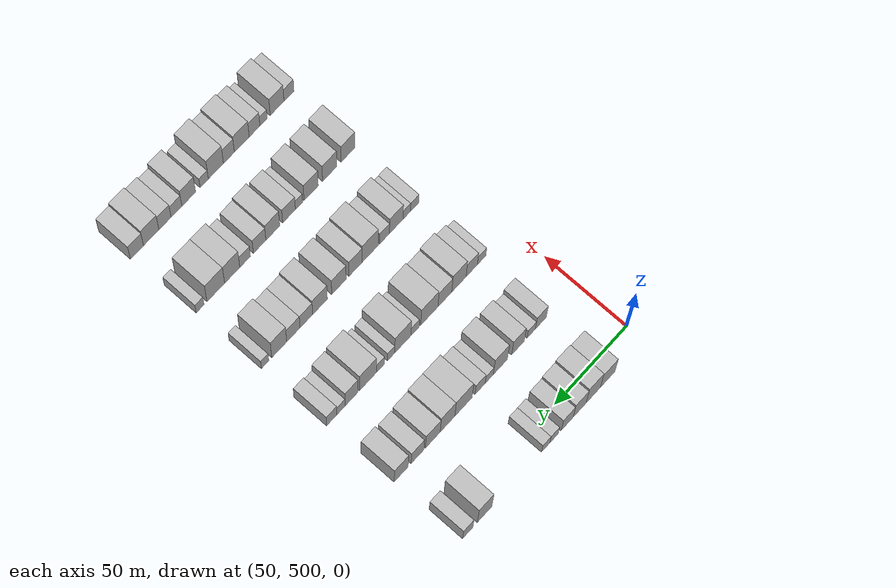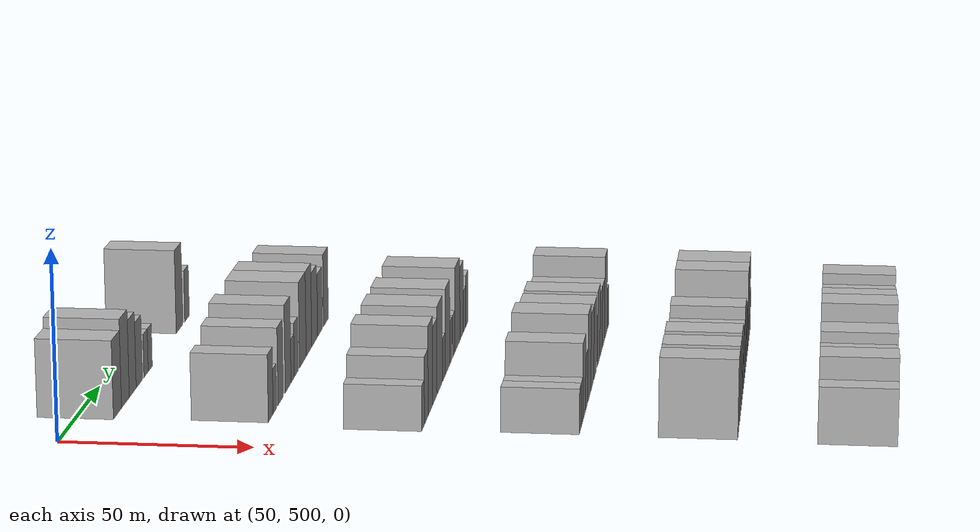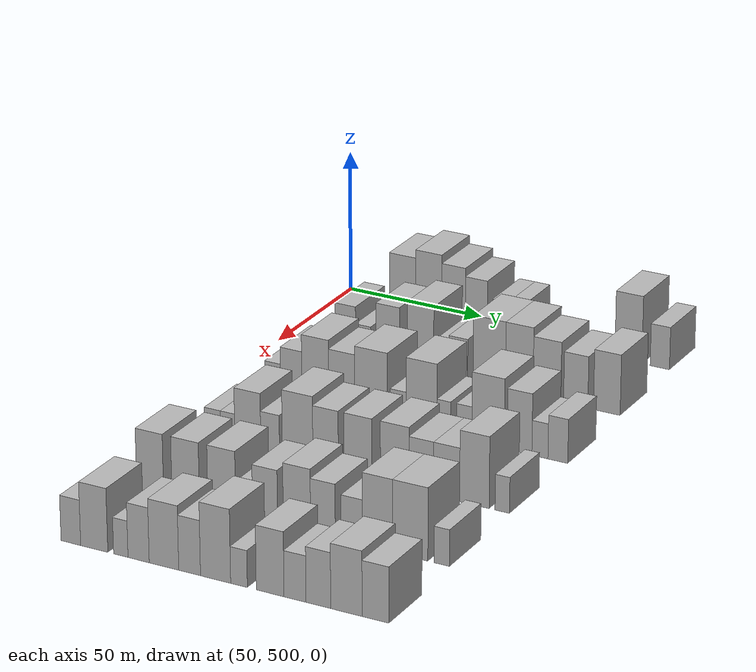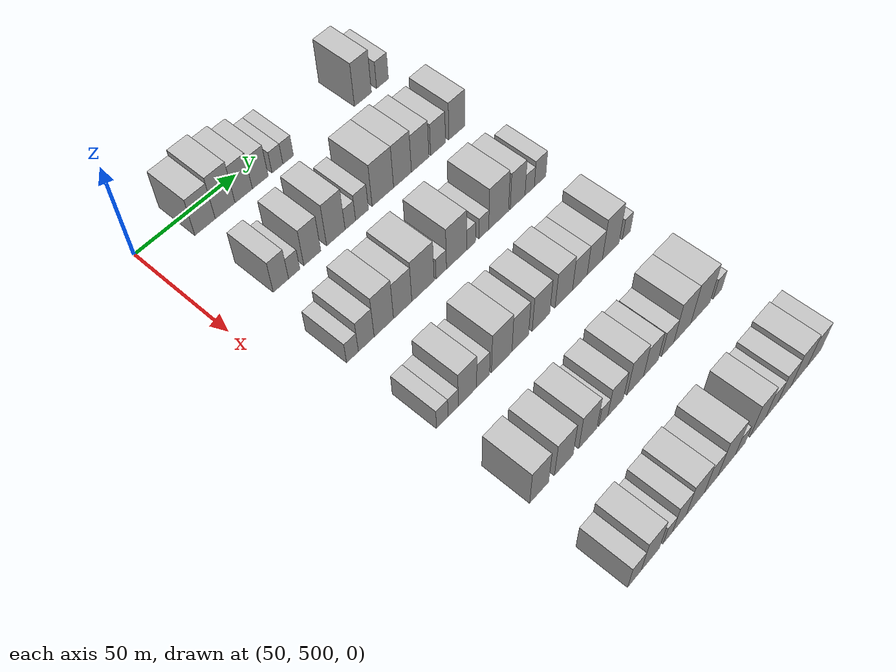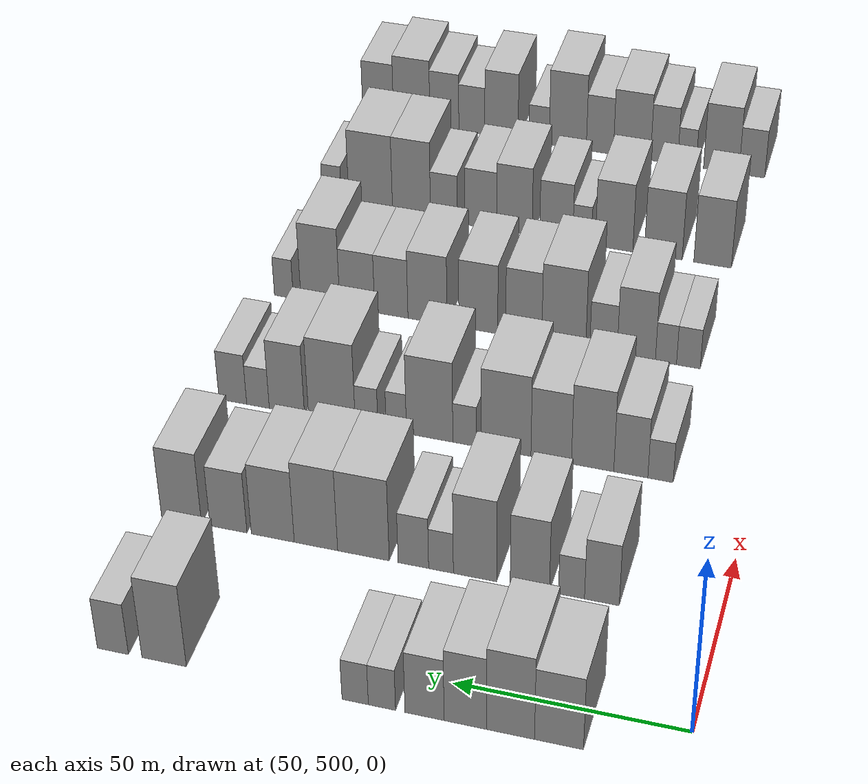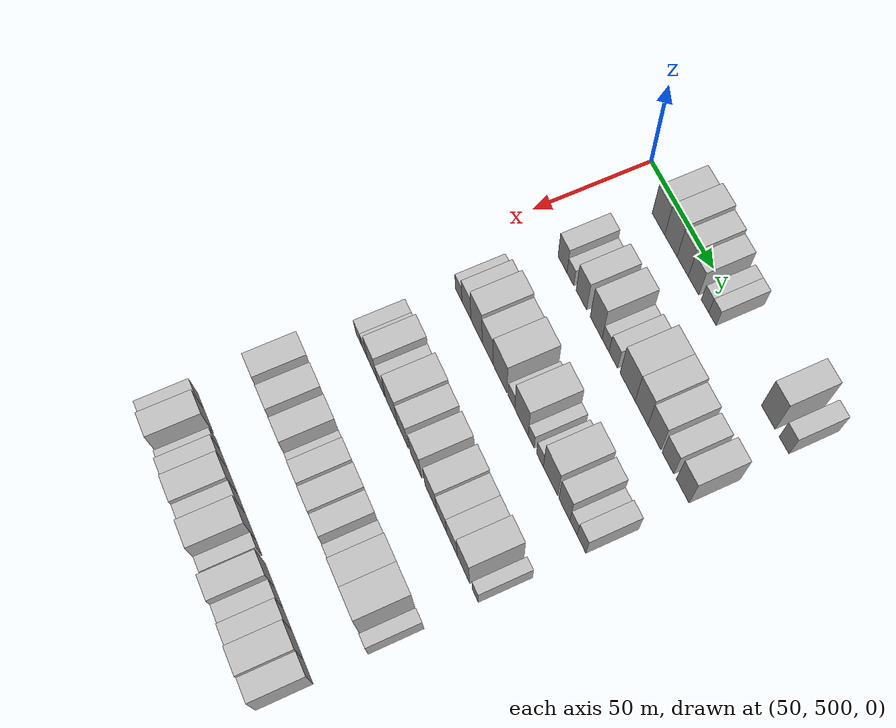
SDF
<sdf version="1.6">
 <world name="default">
  <model name="building_122">
   <static>1</static>
   <pose>50.0000 525.2408 0 0.000000 0.000000 0.000000</pose>
   <link name="link">
    <pose>0 0 10.50 0 0 0</pose>
    <collision name="collision"><geometry><box><size>20.0000 10.0900 21.0000</size></box></geometry></collision>
    <visual name="visual">
     <cast_shadows>0</cast_shadows>
     <geometry><box><size>20.0000 10.0900 21.0000</size></box></geometry>
     <material>
      <script>
       <uri>model://HANNAS_wall/materials/scripts</uri>
       <uri>model://HANNAS_wall/materials/textures</uri>
       <name>vrc/HANNAS_wall</name>
      </script>
     </material>
    </visual>
   </link>
  </model>
  <model name="building_123">
   <static>1</static>
   <pose>50.0000 535.2632 0 0.000000 0.000000 0.000000</pose>
   <link name="link">
    <pose>0 0 12.00 0 0 0</pose>
    <collision name="collision"><geometry><box><size>20.0000 9.9548 24.0000</size></box></geometry></collision>
    <visual name="visual">
     <cast_shadows>0</cast_shadows>
     <geometry><box><size>20.0000 9.9548 24.0000</size></box></geometry>
     <material>
      <script>
       <uri>model://HANNAS_wall/materials/scripts</uri>
       <uri>model://HANNAS_wall/materials/textures</uri>
       <name>vrc/HANNAS_wall</name>
      </script>
     </material>
    </visual>
   </link>
  </model>
  <model name="building_124">
   <static>1</static>
   <pose>50.0000 544.6815 0 0.000000 0.000000 0.000000</pose>
   <link name="link">
    <pose>0 0 10.50 0 0 0</pose>
    <collision name="collision"><geometry><box><size>20.0000 8.8819 21.0000</size></box></geometry></collision>
    <visual name="visual">
     <cast_shadows>0</cast_shadows>
     <geometry><box><size>20.0000 8.8819 21.0000</size></box></geometry>
     <material>
      <script>
       <uri>model://HANNAS_wall/materials/scripts</uri>
       <uri>model://HANNAS_wall/materials/textures</uri>
       <name>vrc/HANNAS_wall</name>
      </script>
     </material>
    </visual>
   </link>
  </model>
  <model name="building_125">
   <static>1</static>
   <pose>50.0000 553.2467 0 0.000000 0.000000 0.000000</pose>
   <link name="link">
    <pose>0 0 9.00 0 0 0</pose>
    <collision name="collision"><geometry><box><size>20.0000 8.2486 18.0000</size></box></geometry></collision>
    <visual name="visual">
     <cast_shadows>0</cast_shadows>
     <geometry><box><size>20.0000 8.2486 18.0000</size></box></geometry>
     <material>
      <script>
       <uri>model://HANNAS_wall/materials/scripts</uri>
       <uri>model://HANNAS_wall/materials/textures</uri>
       <name>vrc/HANNAS_wall</name>
      </script>
     </material>
    </visual>
   </link>
  </model>
  <model name="building_126">
   <static>1</static>
   <pose>50.0000 562.2612 0 0.000000 0.000000 0.000000</pose>
   <link name="link">
    <pose>0 0 6.00 0 0 0</pose>
    <collision name="collision"><geometry><box><size>20.0000 5.7803 12.0000</size></box></geometry></collision>
    <visual name="visual">
     <cast_shadows>0</cast_shadows>
     <geometry><box><size>20.0000 5.7803 12.0000</size></box></geometry>
     <material>
      <script>
       <uri>model://HANNAS_wall/materials/scripts</uri>
       <uri>model://HANNAS_wall/materials/textures</uri>
       <name>vrc/HANNAS_wall</name>
      </script>
     </material>
    </visual>
   </link>
  </model>
  <model name="building_127">
   <static>1</static>
   <pose>50.0000 567.9656 0 0.000000 0.000000 0.000000</pose>
   <link name="link">
    <pose>0 0 6.00 0 0 0</pose>
    <collision name="collision"><geometry><box><size>20.0000 5.6286 12.0000</size></box></geometry></collision>
    <visual name="visual">
     <cast_shadows>0</cast_shadows>
     <geometry><box><size>20.0000 5.6286 12.0000</size></box></geometry>
     <material>
      <script>
       <uri>model://HANNAS_wall/materials/scripts</uri>
       <uri>model://HANNAS_wall/materials/textures</uri>
       <name>vrc/HANNAS_wall</name>
      </script>
     </material>
    </visual>
   </link>
  </model>
  <model name="building_128">
   <static>1</static>
   <pose>50.0000 609.5150 0 0.000000 0.000000 0.000000</pose>
   <link name="link">
    <pose>0 0 12.00 0 0 0</pose>
    <collision name="collision"><geometry><box><size>20.0000 9.8234 24.0000</size></box></geometry></collision>
    <visual name="visual">
     <cast_shadows>0</cast_shadows>
     <geometry><box><size>20.0000 9.8234 24.0000</size></box></geometry>
     <material>
      <script>
       <uri>model://HANNAS_wall/materials/scripts</uri>
       <uri>model://HANNAS_wall/materials/textures</uri>
       <name>vrc/HANNAS_wall</name>
      </script>
     </material>
    </visual>
   </link>
  </model>
  <model name="building_129">
   <static>1</static>
   <pose>50.0000 620.8971 0 0.000000 0.000000 0.000000</pose>
   <link name="link">
    <pose>0 0 7.50 0 0 0</pose>
    <collision name="collision"><geometry><box><size>20.0000 6.9407 15.0000</size></box></geometry></collision>
    <visual name="visual">
     <cast_shadows>0</cast_shadows>
     <geometry><box><size>20.0000 6.9407 15.0000</size></box></geometry>
     <material>
      <script>
       <uri>model://HANNAS_wall/materials/scripts</uri>
       <uri>model://HANNAS_wall/materials/textures</uri>
       <name>vrc/HANNAS_wall</name>
      </script>
     </material>
    </visual>
   </link>
  </model>
  <model name="building_256">
   <static>1</static>
   <pose>90.0000 525.4615 0 0.000000 0.000000 0.000000</pose>
   <link name="link">
    <pose>0 0 9.00 0 0 0</pose>
    <collision name="collision"><geometry><box><size>20.0000 7.6014 18.0000</size></box></geometry></collision>
    <visual name="visual">
     <cast_shadows>0</cast_shadows>
     <geometry><box><size>20.0000 7.6014 18.0000</size></box></geometry>
     <material>
      <script>
       <uri>model://HANNAS_wall/materials/scripts</uri>
       <uri>model://HANNAS_wall/materials/textures</uri>
       <name>vrc/HANNAS_wall</name>
      </script>
     </material>
    </visual>
   </link>
  </model>
  <model name="building_257">
   <static>1</static>
   <pose>90.0000 532.1139 0 0.000000 0.000000 0.000000</pose>
   <link name="link">
    <pose>0 0 6.00 0 0 0</pose>
    <collision name="collision"><geometry><box><size>20.0000 5.7034 12.0000</size></box></geometry></collision>
    <visual name="visual">
     <cast_shadows>0</cast_shadows>
     <geometry><box><size>20.0000 5.7034 12.0000</size></box></geometry>
     <material>
      <script>
       <uri>model://HANNAS_wall/materials/scripts</uri>
       <uri>model://HANNAS_wall/materials/textures</uri>
       <name>vrc/HANNAS_wall</name>
      </script>
     </material>
    </visual>
   </link>
  </model>
  <model name="building_258">
   <static>1</static>
   <pose>90.0000 541.3035 0 0.000000 0.000000 0.000000</pose>
   <link name="link">
    <pose>0 0 10.50 0 0 0</pose>
    <collision name="collision"><geometry><box><size>20.0000 8.6757 21.0000</size></box></geometry></collision>
    <visual name="visual">
     <cast_shadows>0</cast_shadows>
     <geometry><box><size>20.0000 8.6757 21.0000</size></box></geometry>
     <material>
      <script>
       <uri>model://HANNAS_wall/materials/scripts</uri>
       <uri>model://HANNAS_wall/materials/textures</uri>
       <name>vrc/HANNAS_wall</name>
      </script>
     </material>
    </visual>
   </link>
  </model>
  <model name="building_259">
   <static>1</static>
   <pose>90.0000 553.4825 0 0.000000 0.000000 0.000000</pose>
   <link name="link">
    <pose>0 0 12.00 0 0 0</pose>
    <collision name="collision"><geometry><box><size>20.0000 9.6823 24.0000</size></box></geometry></collision>
    <visual name="visual">
     <cast_shadows>0</cast_shadows>
     <geometry><box><size>20.0000 9.6823 24.0000</size></box></geometry>
     <material>
      <script>
       <uri>model://HANNAS_wall/materials/scripts</uri>
       <uri>model://HANNAS_wall/materials/textures</uri>
       <name>vrc/HANNAS_wall</name>
      </script>
     </material>
    </visual>
   </link>
  </model>
  <model name="building_260">
   <static>1</static>
   <pose>90.0000 561.1058 0 0.000000 0.000000 0.000000</pose>
   <link name="link">
    <pose>0 0 6.00 0 0 0</pose>
    <collision name="collision"><geometry><box><size>20.0000 5.5644 12.0000</size></box></geometry></collision>
    <visual name="visual">
     <cast_shadows>0</cast_shadows>
     <geometry><box><size>20.0000 5.5644 12.0000</size></box></geometry>
     <material>
      <script>
       <uri>model://HANNAS_wall/materials/scripts</uri>
       <uri>model://HANNAS_wall/materials/textures</uri>
       <name>vrc/HANNAS_wall</name>
      </script>
     </material>
    </visual>
   </link>
  </model>
  <model name="building_261">
   <static>1</static>
   <pose>90.0000 567.3326 0 0.000000 0.000000 0.000000</pose>
   <link name="link">
    <pose>0 0 7.50 0 0 0</pose>
    <collision name="collision"><geometry><box><size>20.0000 6.8892 15.0000</size></box></geometry></collision>
    <visual name="visual">
     <cast_shadows>0</cast_shadows>
     <geometry><box><size>20.0000 6.8892 15.0000</size></box></geometry>
     <material>
      <script>
       <uri>model://HANNAS_wall/materials/scripts</uri>
       <uri>model://HANNAS_wall/materials/textures</uri>
       <name>vrc/HANNAS_wall</name>
      </script>
     </material>
    </visual>
   </link>
  </model>
  <model name="building_262">
   <static>1</static>
   <pose>90.0000 578.6612 0 0.000000 0.000000 0.000000</pose>
   <link name="link">
    <pose>0 0 12.00 0 0 0</pose>
    <collision name="collision"><geometry><box><size>20.0000 11.7679 24.0000</size></box></geometry></collision>
    <visual name="visual">
     <cast_shadows>0</cast_shadows>
     <geometry><box><size>20.0000 11.7679 24.0000</size></box></geometry>
     <material>
      <script>
       <uri>model://HANNAS_wall/materials/scripts</uri>
       <uri>model://HANNAS_wall/materials/textures</uri>
       <name>vrc/HANNAS_wall</name>
      </script>
     </material>
    </visual>
   </link>
  </model>
  <model name="building_263">
   <static>1</static>
   <pose>90.0000 589.5356 0 0.000000 0.000000 0.000000</pose>
   <link name="link">
    <pose>0 0 12.00 0 0 0</pose>
    <collision name="collision"><geometry><box><size>20.0000 9.9809 24.0000</size></box></geometry></collision>
    <visual name="visual">
     <cast_shadows>0</cast_shadows>
     <geometry><box><size>20.0000 9.9809 24.0000</size></box></geometry>
     <material>
      <script>
       <uri>model://HANNAS_wall/materials/scripts</uri>
       <uri>model://HANNAS_wall/materials/textures</uri>
       <name>vrc/HANNAS_wall</name>
      </script>
     </material>
    </visual>
   </link>
  </model>
  <model name="building_264">
   <static>1</static>
   <pose>90.0000 599.5096 0 0.000000 0.000000 0.000000</pose>
   <link name="link">
    <pose>0 0 10.50 0 0 0</pose>
    <collision name="collision"><geometry><box><size>20.0000 9.9672 21.0000</size></box></geometry></collision>
    <visual name="visual">
     <cast_shadows>0</cast_shadows>
     <geometry><box><size>20.0000 9.9672 21.0000</size></box></geometry>
     <material>
      <script>
       <uri>model://HANNAS_wall/materials/scripts</uri>
       <uri>model://HANNAS_wall/materials/textures</uri>
       <name>vrc/HANNAS_wall</name>
      </script>
     </material>
    </visual>
   </link>
  </model>
  <model name="building_265">
   <static>1</static>
   <pose>90.0000 609.8126 0 0.000000 0.000000 0.000000</pose>
   <link name="link">
    <pose>0 0 9.00 0 0 0</pose>
    <collision name="collision"><geometry><box><size>20.0000 8.6388 18.0000</size></box></geometry></collision>
    <visual name="visual">
     <cast_shadows>0</cast_shadows>
     <geometry><box><size>20.0000 8.6388 18.0000</size></box></geometry>
     <material>
      <script>
       <uri>model://HANNAS_wall/materials/scripts</uri>
       <uri>model://HANNAS_wall/materials/textures</uri>
       <name>vrc/HANNAS_wall</name>
      </script>
     </material>
    </visual>
   </link>
  </model>
  <model name="building_266">
   <static>1</static>
   <pose>90.0000 620.8417 0 0.000000 0.000000 0.000000</pose>
   <link name="link">
    <pose>0 0 10.50 0 0 0</pose>
    <collision name="collision"><geometry><box><size>20.0000 9.4192 21.0000</size></box></geometry></collision>
    <visual name="visual">
     <cast_shadows>0</cast_shadows>
     <geometry><box><size>20.0000 9.4192 21.0000</size></box></geometry>
     <material>
      <script>
       <uri>model://HANNAS_wall/materials/scripts</uri>
       <uri>model://HANNAS_wall/materials/textures</uri>
       <name>vrc/HANNAS_wall</name>
      </script>
     </material>
    </visual>
   </link>
  </model>
  <model name="building_394">
   <static>1</static>
   <pose>130.0000 520.9118 0 0.000000 0.000000 0.000000</pose>
   <link name="link">
    <pose>0 0 6.00 0 0 0</pose>
    <collision name="collision"><geometry><box><size>20.0000 5.8209 12.0000</size></box></geometry></collision>
    <visual name="visual">
     <cast_shadows>0</cast_shadows>
     <geometry><box><size>20.0000 5.8209 12.0000</size></box></geometry>
     <material>
      <script>
       <uri>model://HANNAS_wall/materials/scripts</uri>
       <uri>model://HANNAS_wall/materials/textures</uri>
       <name>vrc/HANNAS_wall</name>
      </script>
     </material>
    </visual>
   </link>
  </model>
  <model name="building_395">
   <static>1</static>
   <pose>130.0000 527.7635 0 0.000000 0.000000 0.000000</pose>
   <link name="link">
    <pose>0 0 9.00 0 0 0</pose>
    <collision name="collision"><geometry><box><size>20.0000 7.8825 18.0000</size></box></geometry></collision>
    <visual name="visual">
     <cast_shadows>0</cast_shadows>
     <geometry><box><size>20.0000 7.8825 18.0000</size></box></geometry>
     <material>
      <script>
       <uri>model://HANNAS_wall/materials/scripts</uri>
       <uri>model://HANNAS_wall/materials/textures</uri>
       <name>vrc/HANNAS_wall</name>
      </script>
     </material>
    </visual>
   </link>
  </model>
  <model name="building_396">
   <static>1</static>
   <pose>130.0000 536.6407 0 0.000000 0.000000 0.000000</pose>
   <link name="link">
    <pose>0 0 12.00 0 0 0</pose>
    <collision name="collision"><geometry><box><size>20.0000 9.8718 24.0000</size></box></geometry></collision>
    <visual name="visual">
     <cast_shadows>0</cast_shadows>
     <geometry><box><size>20.0000 9.8718 24.0000</size></box></geometry>
     <material>
      <script>
       <uri>model://HANNAS_wall/materials/scripts</uri>
       <uri>model://HANNAS_wall/materials/textures</uri>
       <name>vrc/HANNAS_wall</name>
      </script>
     </material>
    </visual>
   </link>
  </model>
  <model name="building_397">
   <static>1</static>
   <pose>130.0000 546.3269 0 0.000000 0.000000 0.000000</pose>
   <link name="link">
    <pose>0 0 10.50 0 0 0</pose>
    <collision name="collision"><geometry><box><size>20.0000 9.5007 21.0000</size></box></geometry></collision>
    <visual name="visual">
     <cast_shadows>0</cast_shadows>
     <geometry><box><size>20.0000 9.5007 21.0000</size></box></geometry>
     <material>
      <script>
       <uri>model://HANNAS_wall/materials/scripts</uri>
       <uri>model://HANNAS_wall/materials/textures</uri>
       <name>vrc/HANNAS_wall</name>
      </script>
     </material>
    </visual>
   </link>
  </model>
  <model name="building_398">
   <static>1</static>
   <pose>130.0000 557.0005 0 0.000000 0.000000 0.000000</pose>
   <link name="link">
    <pose>0 0 12.00 0 0 0</pose>
    <collision name="collision"><geometry><box><size>20.0000 11.8466 24.0000</size></box></geometry></collision>
    <visual name="visual">
     <cast_shadows>0</cast_shadows>
     <geometry><box><size>20.0000 11.8466 24.0000</size></box></geometry>
     <material>
      <script>
       <uri>model://HANNAS_wall/materials/scripts</uri>
       <uri>model://HANNAS_wall/materials/textures</uri>
       <name>vrc/HANNAS_wall</name>
      </script>
     </material>
    </visual>
   </link>
  </model>
  <model name="building_399">
   <static>1</static>
   <pose>130.0000 566.7498 0 0.000000 0.000000 0.000000</pose>
   <link name="link">
    <pose>0 0 6.00 0 0 0</pose>
    <collision name="collision"><geometry><box><size>20.0000 5.6519 12.0000</size></box></geometry></collision>
    <visual name="visual">
     <cast_shadows>0</cast_shadows>
     <geometry><box><size>20.0000 5.6519 12.0000</size></box></geometry>
     <material>
      <script>
       <uri>model://HANNAS_wall/materials/scripts</uri>
       <uri>model://HANNAS_wall/materials/textures</uri>
       <name>vrc/HANNAS_wall</name>
      </script>
     </material>
    </visual>
   </link>
  </model>
  <model name="building_400">
   <static>1</static>
   <pose>130.0000 575.1380 0 0.000000 0.000000 0.000000</pose>
   <link name="link">
    <pose>0 0 12.00 0 0 0</pose>
    <collision name="collision"><geometry><box><size>20.0000 11.1246 24.0000</size></box></geometry></collision>
    <visual name="visual">
     <cast_shadows>0</cast_shadows>
     <geometry><box><size>20.0000 11.1246 24.0000</size></box></geometry>
     <material>
      <script>
       <uri>model://HANNAS_wall/materials/scripts</uri>
       <uri>model://HANNAS_wall/materials/textures</uri>
       <name>vrc/HANNAS_wall</name>
      </script>
     </material>
    </visual>
   </link>
  </model>
  <model name="building_401">
   <static>1</static>
   <pose>130.0000 583.1389 0 0.000000 0.000000 0.000000</pose>
   <link name="link">
    <pose>0 0 6.00 0 0 0</pose>
    <collision name="collision"><geometry><box><size>20.0000 4.8771 12.0000</size></box></geometry></collision>
    <visual name="visual">
     <cast_shadows>0</cast_shadows>
     <geometry><box><size>20.0000 4.8771 12.0000</size></box></geometry>
     <material>
      <script>
       <uri>model://HANNAS_wall/materials/scripts</uri>
       <uri>model://HANNAS_wall/materials/textures</uri>
       <name>vrc/HANNAS_wall</name>
      </script>
     </material>
    </visual>
   </link>
  </model>
  <model name="building_402">
   <static>1</static>
   <pose>130.0000 590.3279 0 0.000000 0.000000 0.000000</pose>
   <link name="link">
    <pose>0 0 6.00 0 0 0</pose>
    <collision name="collision"><geometry><box><size>20.0000 5.5009 12.0000</size></box></geometry></collision>
    <visual name="visual">
     <cast_shadows>0</cast_shadows>
     <geometry><box><size>20.0000 5.5009 12.0000</size></box></geometry>
     <material>
      <script>
       <uri>model://HANNAS_wall/materials/scripts</uri>
       <uri>model://HANNAS_wall/materials/textures</uri>
       <name>vrc/HANNAS_wall</name>
      </script>
     </material>
    </visual>
   </link>
  </model>
  <model name="building_403">
   <static>1</static>
   <pose>130.0000 598.7804 0 0.000000 0.000000 0.000000</pose>
   <link name="link">
    <pose>0 0 12.00 0 0 0</pose>
    <collision name="collision"><geometry><box><size>20.0000 11.4042 24.0000</size></box></geometry></collision>
    <visual name="visual">
     <cast_shadows>0</cast_shadows>
     <geometry><box><size>20.0000 11.4042 24.0000</size></box></geometry>
     <material>
      <script>
       <uri>model://HANNAS_wall/materials/scripts</uri>
       <uri>model://HANNAS_wall/materials/textures</uri>
       <name>vrc/HANNAS_wall</name>
      </script>
     </material>
    </visual>
   </link>
  </model>
  <model name="building_404">
   <static>1</static>
   <pose>130.0000 609.8149 0 0.000000 0.000000 0.000000</pose>
   <link name="link">
    <pose>0 0 10.50 0 0 0</pose>
    <collision name="collision"><geometry><box><size>20.0000 8.6649 21.0000</size></box></geometry></collision>
    <visual name="visual">
     <cast_shadows>0</cast_shadows>
     <geometry><box><size>20.0000 8.6649 21.0000</size></box></geometry>
     <material>
      <script>
       <uri>model://HANNAS_wall/materials/scripts</uri>
       <uri>model://HANNAS_wall/materials/textures</uri>
       <name>vrc/HANNAS_wall</name>
      </script>
     </material>
    </visual>
   </link>
  </model>
  <model name="building_405">
   <static>1</static>
   <pose>130.0000 616.9475 0 0.000000 0.000000 0.000000</pose>
   <link name="link">
    <pose>0 0 6.00 0 0 0</pose>
    <collision name="collision"><geometry><box><size>20.0000 5.6003 12.0000</size></box></geometry></collision>
    <visual name="visual">
     <cast_shadows>0</cast_shadows>
     <geometry><box><size>20.0000 5.6003 12.0000</size></box></geometry>
     <material>
      <script>
       <uri>model://HANNAS_wall/materials/scripts</uri>
       <uri>model://HANNAS_wall/materials/textures</uri>
       <name>vrc/HANNAS_wall</name>
      </script>
     </material>
    </visual>
   </link>
  </model>
  <model name="building_406">
   <static>1</static>
   <pose>130.0000 623.1791 0 0.000000 0.000000 0.000000</pose>
   <link name="link">
    <pose>0 0 7.50 0 0 0</pose>
    <collision name="collision"><geometry><box><size>20.0000 6.8630 15.0000</size></box></geometry></collision>
    <visual name="visual">
     <cast_shadows>0</cast_shadows>
     <geometry><box><size>20.0000 6.8630 15.0000</size></box></geometry>
     <material>
      <script>
       <uri>model://HANNAS_wall/materials/scripts</uri>
       <uri>model://HANNAS_wall/materials/textures</uri>
       <name>vrc/HANNAS_wall</name>
      </script>
     </material>
    </visual>
   </link>
  </model>
  <model name="building_529">
   <static>1</static>
   <pose>170.0000 522.3220 0 0.000000 0.000000 0.000000</pose>
   <link name="link">
    <pose>0 0 6.00 0 0 0</pose>
    <collision name="collision"><geometry><box><size>20.0000 5.7601 12.0000</size></box></geometry></collision>
    <visual name="visual">
     <cast_shadows>0</cast_shadows>
     <geometry><box><size>20.0000 5.7601 12.0000</size></box></geometry>
     <material>
      <script>
       <uri>model://HANNAS_wall/materials/scripts</uri>
       <uri>model://HANNAS_wall/materials/textures</uri>
       <name>vrc/HANNAS_wall</name>
      </script>
     </material>
    </visual>
   </link>
  </model>
  <model name="building_530">
   <static>1</static>
   <pose>170.0000 527.7777 0 0.000000 0.000000 0.000000</pose>
   <link name="link">
    <pose>0 0 6.00 0 0 0</pose>
    <collision name="collision"><geometry><box><size>20.0000 5.1512 12.0000</size></box></geometry></collision>
    <visual name="visual">
     <cast_shadows>0</cast_shadows>
     <geometry><box><size>20.0000 5.1512 12.0000</size></box></geometry>
     <material>
      <script>
       <uri>model://HANNAS_wall/materials/scripts</uri>
       <uri>model://HANNAS_wall/materials/textures</uri>
       <name>vrc/HANNAS_wall</name>
      </script>
     </material>
    </visual>
   </link>
  </model>
  <model name="building_531">
   <static>1</static>
   <pose>170.0000 535.0440 0 0.000000 0.000000 0.000000</pose>
   <link name="link">
    <pose>0 0 10.50 0 0 0</pose>
    <collision name="collision"><geometry><box><size>20.0000 9.3813 21.0000</size></box></geometry></collision>
    <visual name="visual">
     <cast_shadows>0</cast_shadows>
     <geometry><box><size>20.0000 9.3813 21.0000</size></box></geometry>
     <material>
      <script>
       <uri>model://HANNAS_wall/materials/scripts</uri>
       <uri>model://HANNAS_wall/materials/textures</uri>
       <name>vrc/HANNAS_wall</name>
      </script>
     </material>
    </visual>
   </link>
  </model>
  <model name="building_532">
   <static>1</static>
   <pose>170.0000 543.1079 0 0.000000 0.000000 0.000000</pose>
   <link name="link">
    <pose>0 0 7.50 0 0 0</pose>
    <collision name="collision"><geometry><box><size>20.0000 6.7465 15.0000</size></box></geometry></collision>
    <visual name="visual">
     <cast_shadows>0</cast_shadows>
     <geometry><box><size>20.0000 6.7465 15.0000</size></box></geometry>
     <material>
      <script>
       <uri>model://HANNAS_wall/materials/scripts</uri>
       <uri>model://HANNAS_wall/materials/textures</uri>
       <name>vrc/HANNAS_wall</name>
      </script>
     </material>
    </visual>
   </link>
  </model>
  <model name="building_533">
   <static>1</static>
   <pose>170.0000 552.9335 0 0.000000 0.000000 0.000000</pose>
   <link name="link">
    <pose>0 0 12.00 0 0 0</pose>
    <collision name="collision"><geometry><box><size>20.0000 10.9047 24.0000</size></box></geometry></collision>
    <visual name="visual">
     <cast_shadows>0</cast_shadows>
     <geometry><box><size>20.0000 10.9047 24.0000</size></box></geometry>
     <material>
      <script>
       <uri>model://HANNAS_wall/materials/scripts</uri>
       <uri>model://HANNAS_wall/materials/textures</uri>
       <name>vrc/HANNAS_wall</name>
      </script>
     </material>
    </visual>
   </link>
  </model>
  <model name="building_534">
   <static>1</static>
   <pose>170.0000 562.8985 0 0.000000 0.000000 0.000000</pose>
   <link name="link">
    <pose>0 0 10.50 0 0 0</pose>
    <collision name="collision"><geometry><box><size>20.0000 9.0254 21.0000</size></box></geometry></collision>
    <visual name="visual">
     <cast_shadows>0</cast_shadows>
     <geometry><box><size>20.0000 9.0254 21.0000</size></box></geometry>
     <material>
      <script>
       <uri>model://HANNAS_wall/materials/scripts</uri>
       <uri>model://HANNAS_wall/materials/textures</uri>
       <name>vrc/HANNAS_wall</name>
      </script>
     </material>
    </visual>
   </link>
  </model>
  <model name="building_535">
   <static>1</static>
   <pose>170.0000 574.2990 0 0.000000 0.000000 0.000000</pose>
   <link name="link">
    <pose>0 0 10.50 0 0 0</pose>
    <collision name="collision"><geometry><box><size>20.0000 9.7757 21.0000</size></box></geometry></collision>
    <visual name="visual">
     <cast_shadows>0</cast_shadows>
     <geometry><box><size>20.0000 9.7757 21.0000</size></box></geometry>
     <material>
      <script>
       <uri>model://HANNAS_wall/materials/scripts</uri>
       <uri>model://HANNAS_wall/materials/textures</uri>
       <name>vrc/HANNAS_wall</name>
      </script>
     </material>
    </visual>
   </link>
  </model>
  <model name="building_536">
   <static>1</static>
   <pose>170.0000 587.1597 0 0.000000 0.000000 0.000000</pose>
   <link name="link">
    <pose>0 0 10.50 0 0 0</pose>
    <collision name="collision"><geometry><box><size>20.0000 9.9457 21.0000</size></box></geometry></collision>
    <visual name="visual">
     <cast_shadows>0</cast_shadows>
     <geometry><box><size>20.0000 9.9457 21.0000</size></box></geometry>
     <material>
      <script>
       <uri>model://HANNAS_wall/materials/scripts</uri>
       <uri>model://HANNAS_wall/materials/textures</uri>
       <name>vrc/HANNAS_wall</name>
      </script>
     </material>
    </visual>
   </link>
  </model>
  <model name="building_537">
   <static>1</static>
   <pose>170.0000 596.3901 0 0.000000 0.000000 0.000000</pose>
   <link name="link">
    <pose>0 0 9.00 0 0 0</pose>
    <collision name="collision"><geometry><box><size>20.0000 8.5151 18.0000</size></box></geometry></collision>
    <visual name="visual">
     <cast_shadows>0</cast_shadows>
     <geometry><box><size>20.0000 8.5151 18.0000</size></box></geometry>
     <material>
      <script>
       <uri>model://HANNAS_wall/materials/scripts</uri>
       <uri>model://HANNAS_wall/materials/textures</uri>
       <name>vrc/HANNAS_wall</name>
      </script>
     </material>
    </visual>
   </link>
  </model>
  <model name="building_538">
   <static>1</static>
   <pose>170.0000 605.1374 0 0.000000 0.000000 0.000000</pose>
   <link name="link">
    <pose>0 0 9.00 0 0 0</pose>
    <collision name="collision"><geometry><box><size>20.0000 8.9795 18.0000</size></box></geometry></collision>
    <visual name="visual">
     <cast_shadows>0</cast_shadows>
     <geometry><box><size>20.0000 8.9795 18.0000</size></box></geometry>
     <material>
      <script>
       <uri>model://HANNAS_wall/materials/scripts</uri>
       <uri>model://HANNAS_wall/materials/textures</uri>
       <name>vrc/HANNAS_wall</name>
      </script>
     </material>
    </visual>
   </link>
  </model>
  <model name="building_539">
   <static>1</static>
   <pose>170.0000 614.6686 0 0.000000 0.000000 0.000000</pose>
   <link name="link">
    <pose>0 0 12.00 0 0 0</pose>
    <collision name="collision"><geometry><box><size>20.0000 10.0831 24.0000</size></box></geometry></collision>
    <visual name="visual">
     <cast_shadows>0</cast_shadows>
     <geometry><box><size>20.0000 10.0831 24.0000</size></box></geometry>
     <material>
      <script>
       <uri>model://HANNAS_wall/materials/scripts</uri>
       <uri>model://HANNAS_wall/materials/textures</uri>
       <name>vrc/HANNAS_wall</name>
      </script>
     </material>
    </visual>
   </link>
  </model>
  <model name="building_540">
   <static>1</static>
   <pose>170.0000 624.1752 0 0.000000 0.000000 0.000000</pose>
   <link name="link">
    <pose>0 0 6.00 0 0 0</pose>
    <collision name="collision"><geometry><box><size>20.0000 4.9301 12.0000</size></box></geometry></collision>
    <visual name="visual">
     <cast_shadows>0</cast_shadows>
     <geometry><box><size>20.0000 4.9301 12.0000</size></box></geometry>
     <material>
      <script>
       <uri>model://HANNAS_wall/materials/scripts</uri>
       <uri>model://HANNAS_wall/materials/textures</uri>
       <name>vrc/HANNAS_wall</name>
      </script>
     </material>
    </visual>
   </link>
  </model>
  <model name="building_666">
   <static>1</static>
   <pose>210.0000 523.9274 0 0.000000 0.000000 0.000000</pose>
   <link name="link">
    <pose>0 0 10.50 0 0 0</pose>
    <collision name="collision"><geometry><box><size>20.0000 9.6089 21.0000</size></box></geometry></collision>
    <visual name="visual">
     <cast_shadows>0</cast_shadows>
     <geometry><box><size>20.0000 9.6089 21.0000</size></box></geometry>
     <material>
      <script>
       <uri>model://HANNAS_wall/materials/scripts</uri>
       <uri>model://HANNAS_wall/materials/textures</uri>
       <name>vrc/HANNAS_wall</name>
      </script>
     </material>
    </visual>
   </link>
  </model>
  <model name="building_667">
   <static>1</static>
   <pose>210.0000 536.5998 0 0.000000 0.000000 0.000000</pose>
   <link name="link">
    <pose>0 0 10.50 0 0 0</pose>
    <collision name="collision"><geometry><box><size>20.0000 9.7358 21.0000</size></box></geometry></collision>
    <visual name="visual">
     <cast_shadows>0</cast_shadows>
     <geometry><box><size>20.0000 9.7358 21.0000</size></box></geometry>
     <material>
      <script>
       <uri>model://HANNAS_wall/materials/scripts</uri>
       <uri>model://HANNAS_wall/materials/textures</uri>
       <name>vrc/HANNAS_wall</name>
      </script>
     </material>
    </visual>
   </link>
  </model>
  <model name="building_668">
   <static>1</static>
   <pose>210.0000 549.3383 0 0.000000 0.000000 0.000000</pose>
   <link name="link">
    <pose>0 0 10.50 0 0 0</pose>
    <collision name="collision"><geometry><box><size>20.0000 9.7413 21.0000</size></box></geometry></collision>
    <visual name="visual">
     <cast_shadows>0</cast_shadows>
     <geometry><box><size>20.0000 9.7413 21.0000</size></box></geometry>
     <material>
      <script>
       <uri>model://HANNAS_wall/materials/scripts</uri>
       <uri>model://HANNAS_wall/materials/textures</uri>
       <name>vrc/HANNAS_wall</name>
      </script>
     </material>
    </visual>
   </link>
  </model>
  <model name="building_669">
   <static>1</static>
   <pose>210.0000 557.6668 0 0.000000 0.000000 0.000000</pose>
   <link name="link">
    <pose>0 0 6.00 0 0 0</pose>
    <collision name="collision"><geometry><box><size>20.0000 4.9158 12.0000</size></box></geometry></collision>
    <visual name="visual">
     <cast_shadows>0</cast_shadows>
     <geometry><box><size>20.0000 4.9158 12.0000</size></box></geometry>
     <material>
      <script>
       <uri>model://HANNAS_wall/materials/scripts</uri>
       <uri>model://HANNAS_wall/materials/textures</uri>
       <name>vrc/HANNAS_wall</name>
      </script>
     </material>
    </visual>
   </link>
  </model>
  <model name="building_670">
   <static>1</static>
   <pose>210.0000 564.4655 0 0.000000 0.000000 0.000000</pose>
   <link name="link">
    <pose>0 0 9.00 0 0 0</pose>
    <collision name="collision"><geometry><box><size>20.0000 8.6816 18.0000</size></box></geometry></collision>
    <visual name="visual">
     <cast_shadows>0</cast_shadows>
     <geometry><box><size>20.0000 8.6816 18.0000</size></box></geometry>
     <material>
      <script>
       <uri>model://HANNAS_wall/materials/scripts</uri>
       <uri>model://HANNAS_wall/materials/textures</uri>
       <name>vrc/HANNAS_wall</name>
      </script>
     </material>
    </visual>
   </link>
  </model>
  <model name="building_671">
   <static>1</static>
   <pose>210.0000 575.5042 0 0.000000 0.000000 0.000000</pose>
   <link name="link">
    <pose>0 0 10.50 0 0 0</pose>
    <collision name="collision"><geometry><box><size>20.0000 9.3958 21.0000</size></box></geometry></collision>
    <visual name="visual">
     <cast_shadows>0</cast_shadows>
     <geometry><box><size>20.0000 9.3958 21.0000</size></box></geometry>
     <material>
      <script>
       <uri>model://HANNAS_wall/materials/scripts</uri>
       <uri>model://HANNAS_wall/materials/textures</uri>
       <name>vrc/HANNAS_wall</name>
      </script>
     </material>
    </visual>
   </link>
  </model>
  <model name="building_672">
   <static>1</static>
   <pose>210.0000 584.4379 0 0.000000 0.000000 0.000000</pose>
   <link name="link">
    <pose>0 0 9.00 0 0 0</pose>
    <collision name="collision"><geometry><box><size>20.0000 8.4716 18.0000</size></box></geometry></collision>
    <visual name="visual">
     <cast_shadows>0</cast_shadows>
     <geometry><box><size>20.0000 8.4716 18.0000</size></box></geometry>
     <material>
      <script>
       <uri>model://HANNAS_wall/materials/scripts</uri>
       <uri>model://HANNAS_wall/materials/textures</uri>
       <name>vrc/HANNAS_wall</name>
      </script>
     </material>
    </visual>
   </link>
  </model>
  <model name="building_673">
   <static>1</static>
   <pose>210.0000 594.2613 0 0.000000 0.000000 0.000000</pose>
   <link name="link">
    <pose>0 0 7.50 0 0 0</pose>
    <collision name="collision"><geometry><box><size>20.0000 7.1751 15.0000</size></box></geometry></collision>
    <visual name="visual">
     <cast_shadows>0</cast_shadows>
     <geometry><box><size>20.0000 7.1751 15.0000</size></box></geometry>
     <material>
      <script>
       <uri>model://HANNAS_wall/materials/scripts</uri>
       <uri>model://HANNAS_wall/materials/textures</uri>
       <name>vrc/HANNAS_wall</name>
      </script>
     </material>
    </visual>
   </link>
  </model>
  <model name="building_674">
   <static>1</static>
   <pose>210.0000 602.9688 0 0.000000 0.000000 0.000000</pose>
   <link name="link">
    <pose>0 0 12.00 0 0 0</pose>
    <collision name="collision"><geometry><box><size>20.0000 10.2399 24.0000</size></box></geometry></collision>
    <visual name="visual">
     <cast_shadows>0</cast_shadows>
     <geometry><box><size>20.0000 10.2399 24.0000</size></box></geometry>
     <material>
      <script>
       <uri>model://HANNAS_wall/materials/scripts</uri>
       <uri>model://HANNAS_wall/materials/textures</uri>
       <name>vrc/HANNAS_wall</name>
      </script>
     </material>
    </visual>
   </link>
  </model>
  <model name="building_675">
   <static>1</static>
   <pose>210.0000 614.0104 0 0.000000 0.000000 0.000000</pose>
   <link name="link">
    <pose>0 0 12.00 0 0 0</pose>
    <collision name="collision"><geometry><box><size>20.0000 11.8432 24.0000</size></box></geometry></collision>
    <visual name="visual">
     <cast_shadows>0</cast_shadows>
     <geometry><box><size>20.0000 11.8432 24.0000</size></box></geometry>
     <material>
      <script>
       <uri>model://HANNAS_wall/materials/scripts</uri>
       <uri>model://HANNAS_wall/materials/textures</uri>
       <name>vrc/HANNAS_wall</name>
      </script>
     </material>
    </visual>
   </link>
  </model>
  <model name="building_676">
   <static>1</static>
   <pose>210.0000 624.5521 0 0.000000 0.000000 0.000000</pose>
   <link name="link">
    <pose>0 0 6.00 0 0 0</pose>
    <collision name="collision"><geometry><box><size>20.0000 5.2403 12.0000</size></box></geometry></collision>
    <visual name="visual">
     <cast_shadows>0</cast_shadows>
     <geometry><box><size>20.0000 5.2403 12.0000</size></box></geometry>
     <material>
      <script>
       <uri>model://HANNAS_wall/materials/scripts</uri>
       <uri>model://HANNAS_wall/materials/textures</uri>
       <name>vrc/HANNAS_wall</name>
      </script>
     </material>
    </visual>
   </link>
  </model>
  <model name="building_807">
   <static>1</static>
   <pose>250.0000 520.8765 0 0.000000 0.000000 0.000000</pose>
   <link name="link">
    <pose>0 0 7.50 0 0 0</pose>
    <collision name="collision"><geometry><box><size>20.0000 6.9151 15.0000</size></box></geometry></collision>
    <visual name="visual">
     <cast_shadows>0</cast_shadows>
     <geometry><box><size>20.0000 6.9151 15.0000</size></box></geometry>
     <material>
      <script>
       <uri>model://HANNAS_wall/materials/scripts</uri>
       <uri>model://HANNAS_wall/materials/textures</uri>
       <name>vrc/HANNAS_wall</name>
      </script>
     </material>
    </visual>
   </link>
  </model>
  <model name="building_808">
   <static>1</static>
   <pose>250.0000 529.0928 0 0.000000 0.000000 0.000000</pose>
   <link name="link">
    <pose>0 0 10.50 0 0 0</pose>
    <collision name="collision"><geometry><box><size>20.0000 9.5175 21.0000</size></box></geometry></collision>
    <visual name="visual">
     <cast_shadows>0</cast_shadows>
     <geometry><box><size>20.0000 9.5175 21.0000</size></box></geometry>
     <material>
      <script>
       <uri>model://HANNAS_wall/materials/scripts</uri>
       <uri>model://HANNAS_wall/materials/textures</uri>
       <name>vrc/HANNAS_wall</name>
      </script>
     </material>
    </visual>
   </link>
  </model>
  <model name="building_809">
   <static>1</static>
   <pose>250.0000 538.3557 0 0.000000 0.000000 0.000000</pose>
   <link name="link">
    <pose>0 0 6.00 0 0 0</pose>
    <collision name="collision"><geometry><box><size>20.0000 5.0084 12.0000</size></box></geometry></collision>
    <visual name="visual">
     <cast_shadows>0</cast_shadows>
     <geometry><box><size>20.0000 5.0084 12.0000</size></box></geometry>
     <material>
      <script>
       <uri>model://HANNAS_wall/materials/scripts</uri>
       <uri>model://HANNAS_wall/materials/textures</uri>
       <name>vrc/HANNAS_wall</name>
      </script>
     </material>
    </visual>
   </link>
  </model>
  <model name="building_810">
   <static>1</static>
   <pose>250.0000 544.5425 0 0.000000 0.000000 0.000000</pose>
   <link name="link">
    <pose>0 0 9.00 0 0 0</pose>
    <collision name="collision"><geometry><box><size>20.0000 7.3651 18.0000</size></box></geometry></collision>
    <visual name="visual">
     <cast_shadows>0</cast_shadows>
     <geometry><box><size>20.0000 7.3651 18.0000</size></box></geometry>
     <material>
      <script>
       <uri>model://HANNAS_wall/materials/scripts</uri>
       <uri>model://HANNAS_wall/materials/textures</uri>
       <name>vrc/HANNAS_wall</name>
      </script>
     </material>
    </visual>
   </link>
  </model>
  <model name="building_811">
   <static>1</static>
   <pose>250.0000 553.3016 0 0.000000 0.000000 0.000000</pose>
   <link name="link">
    <pose>0 0 10.50 0 0 0</pose>
    <collision name="collision"><geometry><box><size>20.0000 10.1531 21.0000</size></box></geometry></collision>
    <visual name="visual">
     <cast_shadows>0</cast_shadows>
     <geometry><box><size>20.0000 10.1531 21.0000</size></box></geometry>
     <material>
      <script>
       <uri>model://HANNAS_wall/materials/scripts</uri>
       <uri>model://HANNAS_wall/materials/textures</uri>
       <name>vrc/HANNAS_wall</name>
      </script>
     </material>
    </visual>
   </link>
  </model>
  <model name="building_812">
   <static>1</static>
   <pose>250.0000 562.1021 0 0.000000 0.000000 0.000000</pose>
   <link name="link">
    <pose>0 0 9.00 0 0 0</pose>
    <collision name="collision"><geometry><box><size>20.0000 7.4479 18.0000</size></box></geometry></collision>
    <visual name="visual">
     <cast_shadows>0</cast_shadows>
     <geometry><box><size>20.0000 7.4479 18.0000</size></box></geometry>
     <material>
      <script>
       <uri>model://HANNAS_wall/materials/scripts</uri>
       <uri>model://HANNAS_wall/materials/textures</uri>
       <name>vrc/HANNAS_wall</name>
      </script>
     </material>
    </visual>
   </link>
  </model>
  <model name="building_813">
   <static>1</static>
   <pose>250.0000 570.9510 0 0.000000 0.000000 0.000000</pose>
   <link name="link">
    <pose>0 0 12.00 0 0 0</pose>
    <collision name="collision"><geometry><box><size>20.0000 10.2500 24.0000</size></box></geometry></collision>
    <visual name="visual">
     <cast_shadows>0</cast_shadows>
     <geometry><box><size>20.0000 10.2500 24.0000</size></box></geometry>
     <material>
      <script>
       <uri>model://HANNAS_wall/materials/scripts</uri>
       <uri>model://HANNAS_wall/materials/textures</uri>
       <name>vrc/HANNAS_wall</name>
      </script>
     </material>
    </visual>
   </link>
  </model>
  <model name="building_814">
   <static>1</static>
   <pose>250.0000 578.8943 0 0.000000 0.000000 0.000000</pose>
   <link name="link">
    <pose>0 0 6.00 0 0 0</pose>
    <collision name="collision"><geometry><box><size>20.0000 5.6364 12.0000</size></box></geometry></collision>
    <visual name="visual">
     <cast_shadows>0</cast_shadows>
     <geometry><box><size>20.0000 5.6364 12.0000</size></box></geometry>
     <material>
      <script>
       <uri>model://HANNAS_wall/materials/scripts</uri>
       <uri>model://HANNAS_wall/materials/textures</uri>
       <name>vrc/HANNAS_wall</name>
      </script>
     </material>
    </visual>
   </link>
  </model>
  <model name="building_815">
   <static>1</static>
   <pose>250.0000 589.3661 0 0.000000 0.000000 0.000000</pose>
   <link name="link">
    <pose>0 0 10.50 0 0 0</pose>
    <collision name="collision"><geometry><box><size>20.0000 9.3073 21.0000</size></box></geometry></collision>
    <visual name="visual">
     <cast_shadows>0</cast_shadows>
     <geometry><box><size>20.0000 9.3073 21.0000</size></box></geometry>
     <material>
      <script>
       <uri>model://HANNAS_wall/materials/scripts</uri>
       <uri>model://HANNAS_wall/materials/textures</uri>
       <name>vrc/HANNAS_wall</name>
      </script>
     </material>
    </visual>
   </link>
  </model>
  <model name="building_816">
   <static>1</static>
   <pose>250.0000 597.6696 0 0.000000 0.000000 0.000000</pose>
   <link name="link">
    <pose>0 0 7.50 0 0 0</pose>
    <collision name="collision"><geometry><box><size>20.0000 7.2996 15.0000</size></box></geometry></collision>
    <visual name="visual">
     <cast_shadows>0</cast_shadows>
     <geometry><box><size>20.0000 7.2996 15.0000</size></box></geometry>
     <material>
      <script>
       <uri>model://HANNAS_wall/materials/scripts</uri>
       <uri>model://HANNAS_wall/materials/textures</uri>
       <name>vrc/HANNAS_wall</name>
      </script>
     </material>
    </visual>
   </link>
  </model>
  <model name="building_817">
   <static>1</static>
   <pose>250.0000 605.4123 0 0.000000 0.000000 0.000000</pose>
   <link name="link">
    <pose>0 0 9.00 0 0 0</pose>
    <collision name="collision"><geometry><box><size>20.0000 8.1859 18.0000</size></box></geometry></collision>
    <visual name="visual">
     <cast_shadows>0</cast_shadows>
     <geometry><box><size>20.0000 8.1859 18.0000</size></box></geometry>
     <material>
      <script>
       <uri>model://HANNAS_wall/materials/scripts</uri>
       <uri>model://HANNAS_wall/materials/textures</uri>
       <name>vrc/HANNAS_wall</name>
      </script>
     </material>
    </visual>
   </link>
  </model>
  <model name="building_818">
   <static>1</static>
   <pose>250.0000 614.6641 0 0.000000 0.000000 0.000000</pose>
   <link name="link">
    <pose>0 0 10.50 0 0 0</pose>
    <collision name="collision"><geometry><box><size>20.0000 10.3176 21.0000</size></box></geometry></collision>
    <visual name="visual">
     <cast_shadows>0</cast_shadows>
     <geometry><box><size>20.0000 10.3176 21.0000</size></box></geometry>
     <material>
      <script>
       <uri>model://HANNAS_wall/materials/scripts</uri>
       <uri>model://HANNAS_wall/materials/textures</uri>
       <name>vrc/HANNAS_wall</name>
      </script>
     </material>
    </visual>
   </link>
  </model>
  <model name="building_819">
   <static>1</static>
   <pose>250.0000 624.2086 0 0.000000 0.000000 0.000000</pose>
   <link name="link">
    <pose>0 0 9.00 0 0 0</pose>
    <collision name="collision"><geometry><box><size>20.0000 8.7714 18.0000</size></box></geometry></collision>
    <visual name="visual">
     <cast_shadows>0</cast_shadows>
     <geometry><box><size>20.0000 8.7714 18.0000</size></box></geometry>
     <material>
      <script>
       <uri>model://HANNAS_wall/materials/scripts</uri>
       <uri>model://HANNAS_wall/materials/textures</uri>
       <name>vrc/HANNAS_wall</name>
      </script>
     </material>
    </visual>
   </link>
  </model>
 </world>
</sdf>
